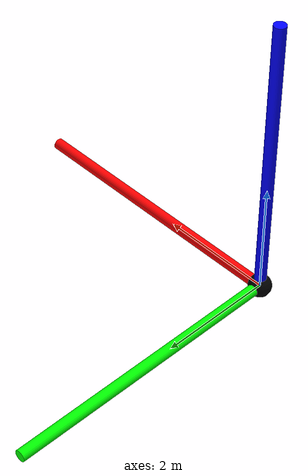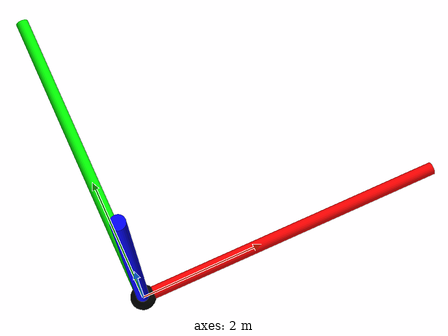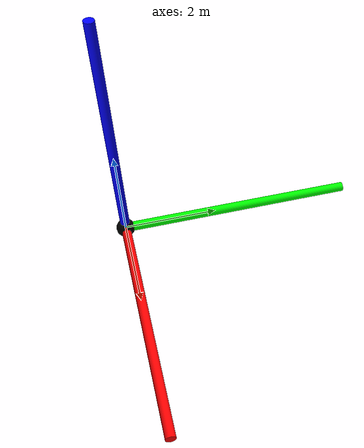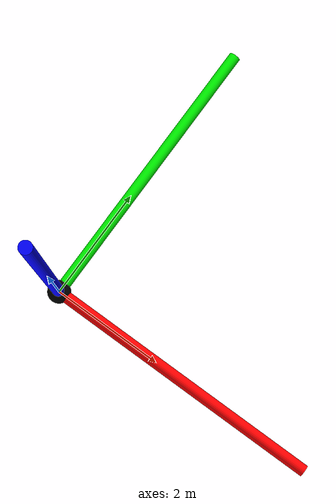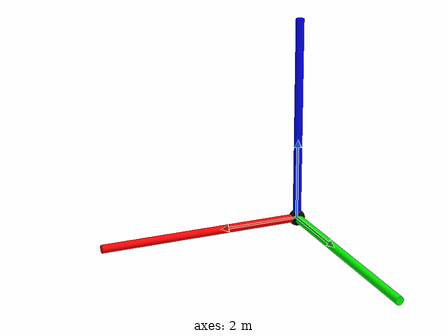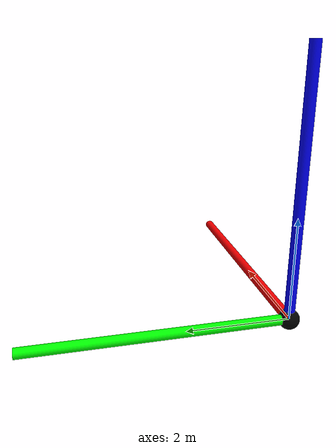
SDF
<sdf version="1.5">
 <world name="hawkshead">
  <physics type="ode">
   <max_step_size>0.02</max_step_size>
   <real_time_factor>1.0</real_time_factor>
   <real_time_update_rate>50</real_time_update_rate>
  </physics>
  <scene>
   <sky><time>12.00</time><sunrise>06.23</sunrise><sunset>17.59</sunset><clouds><speed>12</speed></clouds></sky>
   <shadows>false</shadows>
  </scene>
  <include><uri>model://sun</uri></include>
  <include><uri>model://axes</uri></include>
  <plugin name="environment" filename="libsim_environment.so">
   <rate>1</rate>
   <time><year>2010</year><month>1</month><day>7</day><hour>10</hour><minute>0</minute><second>0</second></time>
  </plugin>
  <plugin name="wind" filename="libsim_wind.so">
   <rate>1</rate>
   <default><speed>0.0</speed><heading>90</heading></default>
  </plugin>
  <plugin name="meteorological" filename="libsim_meteorological.so">
   <rate>1</rate>
   <default><kelvin>273.0</kelvin><millibars>1000.0</millibars><relhumidity>95.0</relhumidity></default>
   <rinex>
    <uri>file://gnss/hers0060.10m</uri>
    <uri>file://gnss/hers0070.10m</uri>
    <uri>file://gnss/hers0080.10m</uri>
   </rinex>
  </plugin>
  <plugin name="satellites" filename="libsim_satellites.so">
   <rate>5</rate>
   <ephemerides>
    <final>
     <gps>
      <uri>file://gnss/igs15652.sp3</uri>
      <uri>file://gnss/igs15653.sp3</uri>
      <uri>file://gnss/igs15654.sp3</uri>
     </gps>
     <glo>
      <uri>file://gnss/igl15652.sp3</uri>
      <uri>file://gnss/igl15653.sp3</uri>
      <uri>file://gnss/igl15654.sp3</uri>
     </glo>
    </final>
    <broadcast>
     <gps>
      <uri>file://gnss/brdc0060.10n</uri>
      <uri>file://gnss/brdc0070.10n</uri>
      <uri>file://gnss/brdc0080.10n</uri>
     </gps>
     <glo>
      <uri>file://gnss/brdc0060.10g</uri>
      <uri>file://gnss/brdc0070.10g</uri>
      <uri>file://gnss/brdc0080.10g</uri>
     </glo>
    </broadcast>
   </ephemerides>
   <ionosphere>
    <uri>file://gnss/igsg0060.10i</uri>
    <uri>file://gnss/igsg0070.10i</uri>
    <uri>file://gnss/igsg0080.10i</uri>
   </ionosphere>
   <errors>
    <gpseph><ou><beta>1.0</beta><sigma>0.2</sigma></ou></gpseph>
    <gpsclk><ou><beta>1.0</beta><sigma>0.2</sigma></ou></gpsclk>
    <gpstro><ou><beta>1.0</beta><sigma>0.2</sigma></ou></gpstro>
    <gpsion><ou><beta>1.0</beta><sigma>0.2</sigma></ou></gpsion>
    <gloeph><ou><beta>1.0</beta><sigma>0.2</sigma></ou></gloeph>
    <gloclk><ou><beta>1.0</beta><sigma>0.2</sigma></ou></gloclk>
    <glotro><ou><beta>1.0</beta><sigma>0.2</sigma></ou></glotro>
    <gloion><ou><beta>1.0</beta><sigma>0.2</sigma></ou></gloion>
   </errors>
  </plugin>
 </world>
</sdf>

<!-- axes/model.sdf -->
<sdf version="1.5">
  <model name="axes">
    <static>true</static>
    <link name="link">
      <visual name="origin">
        <pose>0 0 0 0 0 0</pose>
        <geometry>
          <sphere>
            <radius>0.2</radius>
          </sphere>
        </geometry>
        <material>
          <ambient>0 0 0 0</ambient>
        </material>
      </visual>
      <visual name="east">
        <pose>2.5 0 0 0 1.57079632679 0</pose>
        <geometry>
          <cylinder>
            <radius>0.1</radius>
            <length>5.0</length>
          </cylinder>
        </geometry>
        <material>
          <ambient>1 0 0 0</ambient>
        </material>
      </visual>
      <visual name="north">
        <pose>0 2.5 0 1.57079632679 0 0</pose>
        <geometry>
          <cylinder>
            <radius>0.1</radius>
            <length>5.0</length>
          </cylinder>
        </geometry>
        <material>
          <ambient>0 1 0 0</ambient>
        </material>
      </visual>
      <visual name="up">
        <pose>0 0 2.5 0 0 0</pose>
        <geometry>
          <cylinder>
            <radius>0.1</radius>
            <length>5.0</length>
          </cylinder>
        </geometry>
        <material>
          <ambient>0 0 1 0</ambient>
        </material>
      </visual>
    </link>
  </model>
</sdf>
